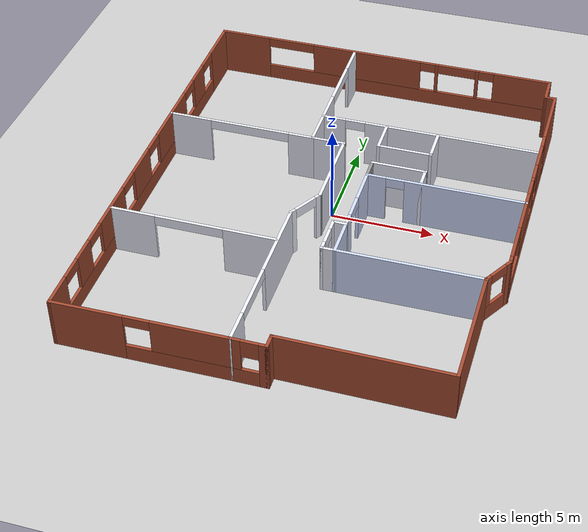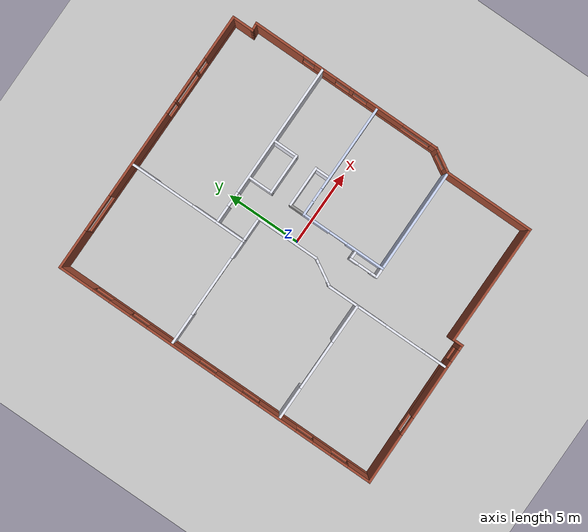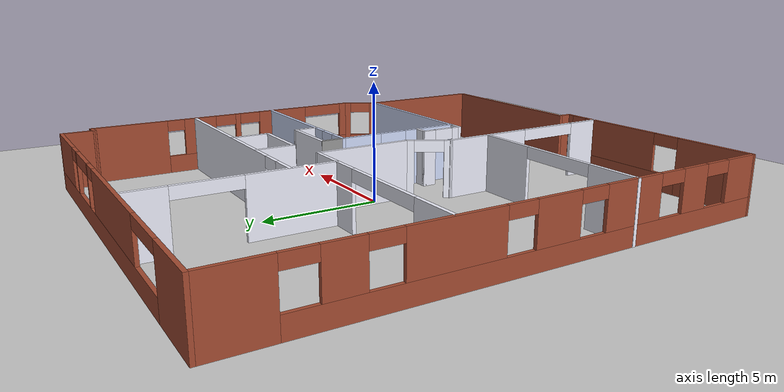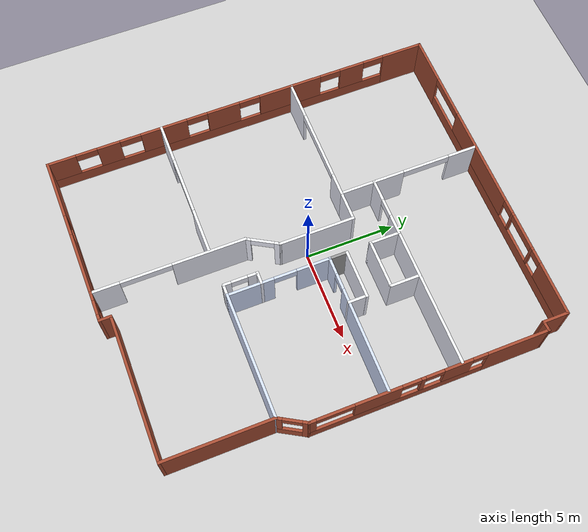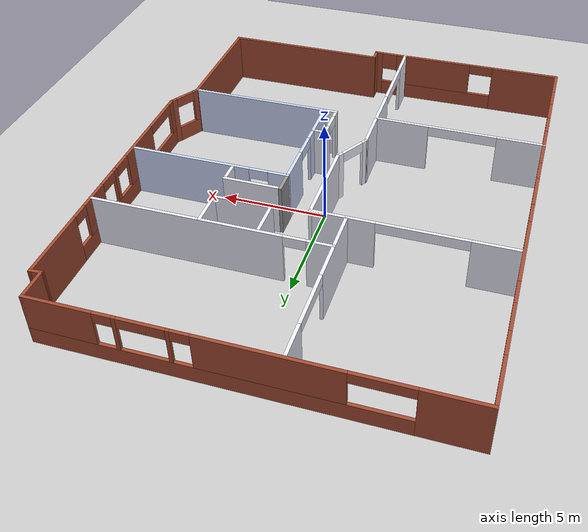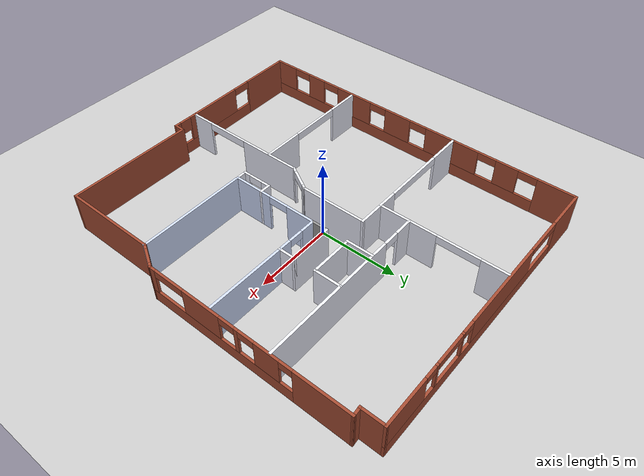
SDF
<sdf version="1.6">
 <world name="Apartment 1023">
  <model name="ground_plane">
   <static>1</static>
   <link name="link">
    <collision name="collision">
     <geometry><plane><normal>0 0 1</normal><size>100 100</size></plane></geometry>
     <surface><friction><ode><mu>100</mu><mu2>50</mu2></ode></friction></surface>
    </collision>
    <visual name="visual">
     <cast_shadows>0</cast_shadows>
     <geometry><plane><normal>0 0 1</normal><size>100 100</size></plane></geometry>
     <material>
      <script><uri>file://media/materials/scripts/gazebo.material</uri><name>Gazebo/Grey</name></script>
     </material>
    </visual>
   </link>
  </model>
  <model name="Apartment 1023">
   <pose>0.01101 -0.47433 0 0 -0 0</pose>
   <link name="Wall_0">
    <pose>9.15391 3.30895 0 0 0 -1.5708</pose>
    <visual name="Wall_0_Visual_0">
     <pose>-4.77738 0 1.25 0 -0 0</pose>
     <geometry><box><size>3.44524 0.15 2.5</size></box></geometry>
     <material>
      <script><uri>file://media/materials/scripts/gazebo.material</uri><name>Gazebo/Bricks</name></script>
      <ambient>1 1 1 1</ambient>
     </material>
     <meta><layer>0</layer></meta>
    </visual>
    <collision name="Wall_0_Collision_0">
     <geometry><box><size>3.44524 0.15 2.5</size></box></geometry>
     <pose>-4.77738 0 1.25 0 -0 0</pose>
    </collision>
    <visual name="Wall_0_Visual_1">
     <pose>1.72262 0 0.4 0 -0 0</pose>
     <geometry><box><size>9.55476 0.15 0.8</size></box></geometry>
     <material>
      <script><uri>file://media/materials/scripts/gazebo.material</uri><name>Gazebo/Bricks</name></script>
      <ambient>1 1 1 1</ambient>
     </material>
     <meta><layer>0</layer></meta>
    </visual>
    <collision name="Wall_0_Collision_1">
     <geometry><box><size>9.55476 0.15 0.8</size></box></geometry>
     <pose>1.72262 0 0.4 0 -0 0</pose>
    </collision>
    <visual name="Wall_0_Visual_2">
     <pose>-1.48168 0 1.65 0 -0 0</pose>
     <geometry><box><size>1.54617 0.15 1.7</size></box></geometry>
     <material>
      <script><uri>file://media/materials/scripts/gazebo.material</uri><name>Gazebo/Bricks</name></script>
      <ambient>1 1 1 1</ambient>
     </material>
     <meta><layer>0</layer></meta>
    </visual>
    <collision name="Wall_0_Collision_2">
     <geometry><box><size>1.54617 0.15 1.7</size></box></geometry>
     <pose>-1.48168 0 1.65 0 -0 0</pose>
    </collision>
    <visual name="Wall_0_Visual_3">
     <pose>0.414924 0 1.65 0 -0 0</pose>
     <geometry><box><size>0.247041 0.15 1.7</size></box></geometry>
     <material>
      <script><uri>file://media/materials/scripts/gazebo.material</uri><name>Gazebo/Bricks</name></script>
      <ambient>1 1 1 1</ambient>
     </material>
     <meta><layer>0</layer></meta>
    </visual>
    <collision name="Wall_0_Collision_3">
     <geometry><box><size>0.247041 0.15 1.7</size></box></geometry>
     <pose>0.414924 0 1.65 0 -0 0</pose>
    </collision>
    <visual name="Wall_0_Visual_4">
     <pose>2.79392 0 1.65 0 -0 0</pose>
     <geometry><box><size>2.51094 0.15 1.7</size></box></geometry>
     <material>
      <script><uri>file://media/materials/scripts/gazebo.material</uri><name>Gazebo/Bricks</name></script>
      <ambient>1 1 1 1</ambient>
     </material>
     <meta><layer>0</layer></meta>
    </visual>
    <collision name="Wall_0_Collision_4">
     <geometry><box><size>2.51094 0.15 1.7</size></box></geometry>
     <pose>2.79392 0 1.65 0 -0 0</pose>
    </collision>
    <visual name="Wall_0_Visual_5">
     <pose>6.27469 0 1.65 0 -0 0</pose>
     <geometry><box><size>0.450614 0.15 1.7</size></box></geometry>
     <material>
      <script><uri>file://media/materials/scripts/gazebo.material</uri><name>Gazebo/Bricks</name></script>
      <ambient>1 1 1 1</ambient>
     </material>
     <meta><layer>0</layer></meta>
    </visual>
    <collision name="Wall_0_Collision_5">
     <geometry><box><size>0.450614 0.15 1.7</size></box></geometry>
     <pose>6.27469 0 1.65 0 -0 0</pose>
    </collision>
    <visual name="Wall_0_Visual_6">
     <pose>-2.65476 0 2.25 0 -0 0</pose>
     <geometry><box><size>0.8 0.15 0.5</size></box></geometry>
     <material>
      <script><uri>file://media/materials/scripts/gazebo.material</uri><name>Gazebo/Bricks</name></script>
      <ambient>1 1 1 1</ambient>
     </material>
     <meta><layer>0</layer></meta>
    </visual>
    <collision name="Wall_0_Collision_6">
     <geometry><box><size>0.8 0.15 0.5</size></box></geometry>
     <pose>-2.65476 0 2.25 0 -0 0</pose>
    </collision>
    <visual name="Wall_0_Visual_7">
     <pose>-0.208596 0 2.25 0 -0 0</pose>
     <geometry><box><size>1 0.15 0.5</size></box></geometry>
     <material>
      <script><uri>file://media/materials/scripts/gazebo.material</uri><name>Gazebo/Bricks</name></script>
      <ambient>1 1 1 1</ambient>
     </material>
     <meta><layer>0</layer></meta>
    </visual>
    <collision name="Wall_0_Collision_7">
     <geometry><box><size>1 0.15 0.5</size></box></geometry>
     <pose>-0.208596 0 2.25 0 -0 0</pose>
    </collision>
    <visual name="Wall_0_Visual_8">
     <pose>1.03845 0 2.25 0 -0 0</pose>
     <geometry><box><size>1 0.15 0.5</size></box></geometry>
     <material>
      <script><uri>file://media/materials/scripts/gazebo.material</uri><name>Gazebo/Bricks</name></script>
      <ambient>1 1 1 1</ambient>
     </material>
     <meta><layer>0</layer></meta>
    </visual>
    <collision name="Wall_0_Collision_8">
     <geometry><box><size>1 0.15 0.5</size></box></geometry>
     <pose>1.03845 0 2.25 0 -0 0</pose>
    </collision>
    <visual name="Wall_0_Visual_9">
     <pose>5.04939 0 2.25 0 -0 0</pose>
     <geometry><box><size>2 0.15 0.5</size></box></geometry>
     <material>
      <script><uri>file://media/materials/scripts/gazebo.material</uri><name>Gazebo/Bricks</name></script>
      <ambient>1 1 1 1</ambient>
     </material>
     <meta><layer>0</layer></meta>
    </visual>
    <collision name="Wall_0_Collision_9">
     <geometry><box><size>2 0.15 0.5</size></box></geometry>
     <pose>5.04939 0 2.25 0 -0 0</pose>
    </collision>
   </link>
   <link name="Wall_1">
    <pose>8.75391 -3.80888 0 0 0 -2.0944</pose>
    <visual name="Wall_1_Visual_0">
     <pose>-0.689205 0 1.25 0 -0 0</pose>
     <geometry><box><size>0.371589 0.15 2.5</size></box></geometry>
     <material>
      <script><uri>file://media/materials/scripts/gazebo.material</uri><name>Gazebo/Bricks</name></script>
      <ambient>1 1 1 1</ambient>
     </material>
     <meta><layer>0</layer></meta>
    </visual>
    <collision name="Wall_1_Collision_0">
     <geometry><box><size>0.371589 0.15 2.5</size></box></geometry>
     <pose>-0.689205 0 1.25 0 -0 0</pose>
    </collision>
    <visual name="Wall_1_Visual_1">
     <pose>0.185795 0 0.4 0 -0 0</pose>
     <geometry><box><size>1.37841 0.15 0.8</size></box></geometry>
     <material>
      <script><uri>file://media/materials/scripts/gazebo.material</uri><name>Gazebo/Bricks</name></script>
      <ambient>1 1 1 1</ambient>
     </material>
     <meta><layer>0</layer></meta>
    </visual>
    <collision name="Wall_1_Collision_1">
     <geometry><box><size>1.37841 0.15 0.8</size></box></geometry>
     <pose>0.185795 0 0.4 0 -0 0</pose>
    </collision>
    <visual name="Wall_1_Visual_2">
     <pose>0.685795 0 1.65 0 -0 0</pose>
     <geometry><box><size>0.378411 0.15 1.7</size></box></geometry>
     <material>
      <script><uri>file://media/materials/scripts/gazebo.material</uri><name>Gazebo/Bricks</name></script>
      <ambient>1 1 1 1</ambient>
     </material>
     <meta><layer>0</layer></meta>
    </visual>
    <collision name="Wall_1_Collision_2">
     <geometry><box><size>0.378411 0.15 1.7</size></box></geometry>
     <pose>0.685795 0 1.65 0 -0 0</pose>
    </collision>
    <visual name="Wall_1_Visual_3">
     <pose>-0.003411 0 2.25 0 -0 0</pose>
     <geometry><box><size>1 0.15 0.5</size></box></geometry>
     <material>
      <script><uri>file://media/materials/scripts/gazebo.material</uri><name>Gazebo/Bricks</name></script>
      <ambient>1 1 1 1</ambient>
     </material>
     <meta><layer>0</layer></meta>
    </visual>
    <collision name="Wall_1_Collision_3">
     <geometry><box><size>1 0.15 0.5</size></box></geometry>
     <pose>-0.003411 0 2.25 0 -0 0</pose>
    </collision>
   </link>
   <link name="Wall_10">
    <pose>-1.77108 7.02545 0 0 -0 1.5708</pose>
    <visual name="Wall_10_Visual_0">
     <pose>-2.14904 0 1.25 0 -0 0</pose>
     <geometry><box><size>3.70192 0.15 2.5</size></box></geometry>
     <material>
      <script><uri>file://media/materials/scripts/gazebo.material</uri><name>Gazebo/Grey</name></script>
      <ambient>0.941176 0.94902 1 1</ambient>
     </material>
     <meta><layer>0</layer></meta>
    </visual>
    <collision name="Wall_10_Collision_0">
     <geometry><box><size>3.70192 0.15 2.5</size></box></geometry>
     <pose>-2.14904 0 1.25 0 -0 0</pose>
    </collision>
    <visual name="Wall_10_Visual_1">
     <pose>3.18043 0 1.25 0 -0 0</pose>
     <geometry><box><size>1.63914 0.15 2.5</size></box></geometry>
     <material>
      <script><uri>file://media/materials/scripts/gazebo.material</uri><name>Gazebo/Grey</name></script>
      <ambient>0.941176 0.94902 1 1</ambient>
     </material>
     <meta><layer>0</layer></meta>
    </visual>
    <collision name="Wall_10_Collision_1">
     <geometry><box><size>1.63914 0.15 2.5</size></box></geometry>
     <pose>3.18043 0 1.25 0 -0 0</pose>
    </collision>
    <visual name="Wall_10_Visual_2">
     <pose>1.03139 0 2.25 0 -0 0</pose>
     <geometry><box><size>2.65894 0.15 0.5</size></box></geometry>
     <material>
      <script><uri>file://media/materials/scripts/gazebo.material</uri><name>Gazebo/Grey</name></script>
      <ambient>0.941176 0.94902 1 1</ambient>
     </material>
     <meta><layer>0</layer></meta>
    </visual>
    <collision name="Wall_10_Collision_2">
     <geometry><box><size>2.65894 0.15 0.5</size></box></geometry>
     <pose>1.03139 0 2.25 0 -0 0</pose>
    </collision>
   </link>
   <link name="Wall_13">
    <pose>-0.246085 11.0505 0 0 -0 0</pose>
    <visual name="Wall_13_Visual_0">
     <pose>-7.65813 0 1.25 0 -0 0</pose>
     <geometry><box><size>2.68375 0.15 2.5</size></box></geometry>
     <material>
      <script><uri>file://media/materials/scripts/gazebo.material</uri><name>Gazebo/Bricks</name></script>
      <ambient>1 1 1 1</ambient>
     </material>
     <meta><layer>0</layer></meta>
    </visual>
    <collision name="Wall_13_Collision_0">
     <geometry><box><size>2.68375 0.15 2.5</size></box></geometry>
     <pose>-7.65813 0 1.25 0 -0 0</pose>
    </collision>
    <visual name="Wall_13_Visual_1">
     <pose>1.34187 0 0.4 0 -0 0</pose>
     <geometry><box><size>15.3163 0.15 0.8</size></box></geometry>
     <material>
      <script><uri>file://media/materials/scripts/gazebo.material</uri><name>Gazebo/Bricks</name></script>
      <ambient>1 1 1 1</ambient>
     </material>
     <meta><layer>0</layer></meta>
    </visual>
    <collision name="Wall_13_Collision_1">
     <geometry><box><size>15.3163 0.15 0.8</size></box></geometry>
     <pose>1.34187 0 0.4 0 -0 0</pose>
    </collision>
    <visual name="Wall_13_Visual_2">
     <pose>-0.874893 0 1.65 0 -0 0</pose>
     <geometry><box><size>5.88271 0.15 1.7</size></box></geometry>
     <material>
      <script><uri>file://media/materials/scripts/gazebo.material</uri><name>Gazebo/Bricks</name></script>
      <ambient>1 1 1 1</ambient>
     </material>
     <meta><layer>0</layer></meta>
    </visual>
    <collision name="Wall_13_Collision_2">
     <geometry><box><size>5.88271 0.15 1.7</size></box></geometry>
     <pose>-0.874893 0 1.65 0 -0 0</pose>
    </collision>
    <visual name="Wall_13_Visual_3">
     <pose>2.94577 0 1.65 0 -0 0</pose>
     <geometry><box><size>0.15862 0.15 1.7</size></box></geometry>
     <material>
      <script><uri>file://media/materials/scripts/gazebo.material</uri><name>Gazebo/Bricks</name></script>
      <ambient>1 1 1 1</ambient>
     </material>
     <meta><layer>0</layer></meta>
    </visual>
    <collision name="Wall_13_Collision_3">
     <geometry><box><size>0.15862 0.15 1.7</size></box></geometry>
     <pose>2.94577 0 1.65 0 -0 0</pose>
    </collision>
    <visual name="Wall_13_Visual_4">
     <pose>5.10951 0 1.65 0 -0 0</pose>
     <geometry><box><size>0.168859 0.15 1.7</size></box></geometry>
     <material>
      <script><uri>file://media/materials/scripts/gazebo.material</uri><name>Gazebo/Bricks</name></script>
      <ambient>1 1 1 1</ambient>
     </material>
     <meta><layer>0</layer></meta>
    </visual>
    <collision name="Wall_13_Collision_4">
     <geometry><box><size>0.168859 0.15 1.7</size></box></geometry>
     <pose>5.10951 0 1.65 0 -0 0</pose>
    </collision>
    <visual name="Wall_13_Visual_5">
     <pose>7.49697 0 1.65 0 -0 0</pose>
     <geometry><box><size>3.00606 0.15 1.7</size></box></geometry>
     <material>
      <script><uri>file://media/materials/scripts/gazebo.material</uri><name>Gazebo/Bricks</name></script>
      <ambient>1 1 1 1</ambient>
     </material>
     <meta><layer>0</layer></meta>
    </visual>
    <collision name="Wall_13_Collision_5">
     <geometry><box><size>3.00606 0.15 1.7</size></box></geometry>
     <pose>7.49697 0 1.65 0 -0 0</pose>
    </collision>
    <visual name="Wall_13_Visual_6">
     <pose>-5.06625 0 2.25 0 -0 0</pose>
     <geometry><box><size>2.5 0.15 0.5</size></box></geometry>
     <material>
      <script><uri>file://media/materials/scripts/gazebo.material</uri><name>Gazebo/Bricks</name></script>
      <ambient>1 1 1 1</ambient>
     </material>
     <meta><layer>0</layer></meta>
    </visual>
    <collision name="Wall_13_Collision_6">
     <geometry><box><size>2.5 0.15 0.5</size></box></geometry>
     <pose>-5.06625 0 2.25 0 -0 0</pose>
    </collision>
    <visual name="Wall_13_Visual_7">
     <pose>2.46646 0 2.25 0 -0 0</pose>
     <geometry><box><size>0.8 0.15 0.5</size></box></geometry>
     <material>
      <script><uri>file://media/materials/scripts/gazebo.material</uri><name>Gazebo/Bricks</name></script>
      <ambient>1 1 1 1</ambient>
     </material>
     <meta><layer>0</layer></meta>
    </visual>
    <collision name="Wall_13_Collision_7">
     <geometry><box><size>0.8 0.15 0.5</size></box></geometry>
     <pose>2.46646 0 2.25 0 -0 0</pose>
    </collision>
    <visual name="Wall_13_Visual_8">
     <pose>4.02508 0 2.25 0 -0 0</pose>
     <geometry><box><size>2 0.15 0.5</size></box></geometry>
     <material>
      <script><uri>file://media/materials/scripts/gazebo.material</uri><name>Gazebo/Bricks</name></script>
      <ambient>1 1 1 1</ambient>
     </material>
     <meta><layer>0</layer></meta>
    </visual>
    <collision name="Wall_13_Collision_8">
     <geometry><box><size>2 0.15 0.5</size></box></geometry>
     <pose>4.02508 0 2.25 0 -0 0</pose>
    </collision>
    <visual name="Wall_13_Visual_9">
     <pose>5.59394 0 2.25 0 -0 0</pose>
     <geometry><box><size>0.8 0.15 0.5</size></box></geometry>
     <material>
      <script><uri>file://media/materials/scripts/gazebo.material</uri><name>Gazebo/Bricks</name></script>
      <ambient>1 1 1 1</ambient>
     </material>
     <meta><layer>0</layer></meta>
    </visual>
    <collision name="Wall_13_Collision_9">
     <geometry><box><size>0.8 0.15 0.5</size></box></geometry>
     <pose>5.59394 0 2.25 0 -0 0</pose>
    </collision>
   </link>
   <link name="Wall_14">
    <collision name="Wall_14_Collision">
     <geometry><box><size>1.5 0.15 2.5</size></box></geometry>
     <pose>0 0 1.25 0 -0 0</pose>
    </collision>
    <visual name="Wall_14_Visual">
     <pose>0 0 1.25 0 -0 0</pose>
     <geometry><box><size>1.5 0.15 2.5</size></box></geometry>
     <material>
      <script><uri>file://media/materials/scripts/gazebo.material</uri><name>Gazebo/Bricks</name></script>
      <ambient>1 1 1 1</ambient>
     </material>
     <meta><layer>0</layer></meta>
    </visual>
    <pose>8.67891 10.3755 0 0 0 -1.5708</pose>
   </link>
   <link name="Wall_15">
    <collision name="Wall_15_Collision">
     <geometry><box><size>0.626179 0.15 2.5</size></box></geometry>
     <pose>0 0 1.25 0 -0 0</pose>
    </collision>
    <visual name="Wall_15_Visual">
     <pose>0 0 1.25 0 -0 0</pose>
     <geometry><box><size>0.626179 0.15 2.5</size></box></geometry>
     <material>
      <script><uri>file://media/materials/scripts/gazebo.material</uri><name>Gazebo/Bricks</name></script>
      <ambient>1 1 1 1</ambient>
     </material>
     <meta><layer>0</layer></meta>
    </visual>
    <pose>8.91642 9.7172 0 0 -0 0.070396</pose>
   </link>
   <link name="Wall_17">
    <pose>3.65986 4.99702 0 0 -0 0</pose>
    <visual name="Wall_17_Visual_0">
     <pose>-4.88064 0 1.25 0 -0 0</pose>
     <geometry><box><size>1.23872 0.15 2.5</size></box></geometry>
     <material>
      <script><uri>file://media/materials/scripts/gazebo.material</uri><name>Gazebo/Grey</name></script>
      <ambient>0.941176 0.94902 1 1</ambient>
     </material>
     <meta><layer>0</layer></meta>
    </visual>
    <collision name="Wall_17_Collision_0">
     <geometry><box><size>1.23872 0.15 2.5</size></box></geometry>
     <pose>-4.88064 0 1.25 0 -0 0</pose>
    </collision>
    <visual name="Wall_17_Visual_1">
     <pose>1.11936 0 1.25 0 -0 0</pose>
     <geometry><box><size>8.76128 0.15 2.5</size></box></geometry>
     <material>
      <script><uri>file://media/materials/scripts/gazebo.material</uri><name>Gazebo/Grey</name></script>
      <ambient>0.941176 0.94902 1 1</ambient>
     </material>
     <meta><layer>0</layer></meta>
    </visual>
    <collision name="Wall_17_Collision_1">
     <geometry><box><size>8.76128 0.15 2.5</size></box></geometry>
     <pose>1.11936 0 1.25 0 -0 0</pose>
    </collision>
    <visual name="Wall_17_Visual_2">
     <pose>-3.76128 0 2.25 0 -0 0</pose>
     <geometry><box><size>1 0.15 0.5</size></box></geometry>
     <material>
      <script><uri>file://media/materials/scripts/gazebo.material</uri><name>Gazebo/Grey</name></script>
      <ambient>0.941176 0.94902 1 1</ambient>
     </material>
     <meta><layer>0</layer></meta>
    </visual>
    <collision name="Wall_17_Collision_2">
     <geometry><box><size>1 0.15 0.5</size></box></geometry>
     <pose>-3.76128 0 2.25 0 -0 0</pose>
    </collision>
   </link>
   <link name="Wall_19">
    <collision name="Wall_19_Collision">
     <geometry><box><size>1.75 0.15 2.5</size></box></geometry>
     <pose>0 0 1.25 0 -0 0</pose>
    </collision>
    <visual name="Wall_19_Visual">
     <pose>0 0 1.25 0 -0 0</pose>
     <geometry><box><size>1.75 0.15 2.5</size></box></geometry>
     <material>
      <script><uri>file://media/materials/scripts/gazebo.material</uri><name>Gazebo/Grey</name></script>
      <ambient>0.941176 0.94902 1 1</ambient>
     </material>
     <meta><layer>0</layer></meta>
    </visual>
    <pose>1.50144 4.18379 0 0 0 -1.5708</pose>
   </link>
   <link name="Wall_2">
    <collision name="Wall_2_Collision">
     <geometry><box><size>6 0.15 2.5</size></box></geometry>
     <pose>0 0 1.25 0 -0 0</pose>
    </collision>
    <visual name="Wall_2_Visual">
     <pose>0 0 1.25 0 -0 0</pose>
     <geometry><box><size>6 0.15 2.5</size></box></geometry>
     <material>
      <script><uri>file://media/materials/scripts/gazebo.material</uri><name>Gazebo/Bricks</name></script>
      <ambient>1 1 1 1</ambient>
     </material>
     <meta><layer>0</layer></meta>
    </visual>
    <pose>8.35392 -7.4267 0 0 0 -1.5708</pose>
   </link>
   <link name="Wall_20">
    <collision name="Wall_20_Collision">
     <geometry><box><size>2.75 0.15 2.5</size></box></geometry>
     <pose>0 0 1.25 0 -0 0</pose>
    </collision>
    <visual name="Wall_20_Visual">
     <pose>0 0 1.25 0 -0 0</pose>
     <geometry><box><size>2.75 0.15 2.5</size></box></geometry>
     <material>
      <script><uri>file://media/materials/scripts/gazebo.material</uri><name>Gazebo/Grey</name></script>
      <ambient>0.941176 0.94902 1 1</ambient>
     </material>
     <meta><layer>0</layer></meta>
    </visual>
    <pose>2.80144 3.38379 0 0 -0 0</pose>
   </link>
   <link name="Wall_21">
    <collision name="Wall_21_Collision">
     <geometry><box><size>1.75 0.15 2.5</size></box></geometry>
     <pose>0 0 1.25 0 -0 0</pose>
    </collision>
    <visual name="Wall_21_Visual">
     <pose>0 0 1.25 0 -0 0</pose>
     <geometry><box><size>1.75 0.15 2.5</size></box></geometry>
     <material>
      <script><uri>file://media/materials/scripts/gazebo.material</uri><name>Gazebo/Grey</name></script>
      <ambient>0.941176 0.94902 1 1</ambient>
     </material>
     <meta><layer>0</layer></meta>
    </visual>
    <pose>4.10144 4.18379 0 0 -0 1.5708</pose>
   </link>
   <link name="Wall_3">
    <collision name="Wall_3_Collision">
     <geometry><box><size>8 0.15 2.5</size></box></geometry>
     <pose>0 0 1.25 0 -0 0</pose>
    </collision>
    <visual name="Wall_3_Visual">
     <pose>0 0 1.25 0 -0 0</pose>
     <geometry><box><size>8 0.15 2.5</size></box></geometry>
     <material>
      <script><uri>file://media/materials/scripts/gazebo.material</uri><name>Gazebo/Bricks</name></script>
      <ambient>1 1 1 1</ambient>
     </material>
     <meta><layer>0</layer></meta>
    </visual>
    <pose>4.42891 -10.3517 0 0 -0 3.14159</pose>
   </link>
   <link name="Wall_35">
    <pose>5.34861 1.06112 0 0 -0 3.14159</pose>
    <visual name="Wall_35_Visual_0">
     <pose>-0.950171 0 1.25 0 -0 0</pose>
     <geometry><box><size>5.84966 0.15 2.5</size></box></geometry>
     <material>
      <script><uri>file://media/materials/scripts/gazebo.material</uri><name>Gazebo/Grey</name></script>
      <ambient>0.827451 0.87451 1 1</ambient>
     </material>
     <meta><layer>0</layer></meta>
    </visual>
    <collision name="Wall_35_Collision_0">
     <geometry><box><size>5.84966 0.15 2.5</size></box></geometry>
     <pose>-0.950171 0 1.25 0 -0 0</pose>
    </collision>
    <visual name="Wall_35_Visual_1">
     <pose>3.37483 0 1.25 0 -0 0</pose>
     <geometry><box><size>1.00034 0.15 2.5</size></box></geometry>
     <material>
      <script><uri>file://media/materials/scripts/gazebo.material</uri><name>Gazebo/Grey</name></script>
      <ambient>0.827451 0.87451 1 1</ambient>
     </material>
     <meta><layer>0</layer></meta>
    </visual>
    <collision name="Wall_35_Collision_1">
     <geometry><box><size>1.00034 0.15 2.5</size></box></geometry>
     <pose>3.37483 0 1.25 0 -0 0</pose>
    </collision>
    <visual name="Wall_35_Visual_2">
     <pose>2.42466 0 2.25 0 -0 0</pose>
     <geometry><box><size>0.9 0.15 0.5</size></box></geometry>
     <material>
      <script><uri>file://media/materials/scripts/gazebo.material</uri><name>Gazebo/Grey</name></script>
      <ambient>0.827451 0.87451 1 1</ambient>
     </material>
     <meta><layer>0</layer></meta>
    </visual>
    <collision name="Wall_35_Collision_2">
     <geometry><box><size>0.9 0.15 0.5</size></box></geometry>
     <pose>2.42466 0 2.25 0 -0 0</pose>
    </collision>
   </link>
   <link name="Wall_36">
    <collision name="Wall_36_Collision">
     <geometry><box><size>1.12 0.15 2.5</size></box></geometry>
     <pose>0 0 1.25 0 -0 0</pose>
    </collision>
    <visual name="Wall_36_Visual">
     <pose>0 0 1.25 0 -0 0</pose>
     <geometry><box><size>1.12 0.15 2.5</size></box></geometry>
     <material>
      <script><uri>file://media/materials/scripts/gazebo.material</uri><name>Gazebo/Grey</name></script>
      <ambient>1 1 1 1</ambient>
     </material>
     <meta><layer>0</layer></meta>
    </visual>
    <pose>1.54861 1.54612 0 0 -0 1.5708</pose>
   </link>
   <link name="Wall_37">
    <collision name="Wall_37_Collision">
     <geometry><box><size>2.75 0.15 2.5</size></box></geometry>
     <pose>0 0 1.25 0 -0 0</pose>
    </collision>
    <visual name="Wall_37_Visual">
     <pose>0 0 1.25 0 -0 0</pose>
     <geometry><box><size>2.75 0.15 2.5</size></box></geometry>
     <material>
      <script><uri>file://media/materials/scripts/gazebo.material</uri><name>Gazebo/Grey</name></script>
      <ambient>0.941176 0.94902 1 1</ambient>
     </material>
     <meta><layer>0</layer></meta>
    </visual>
    <pose>2.85861 2.03112 0 0 -0 0</pose>
   </link>
   <link name="Wall_38">
    <collision name="Wall_38_Collision">
     <geometry><box><size>1.12 0.15 2.5</size></box></geometry>
     <pose>0 0 1.25 0 -0 0</pose>
    </collision>
    <visual name="Wall_38_Visual">
     <pose>0 0 1.25 0 -0 0</pose>
     <geometry><box><size>1.12 0.15 2.5</size></box></geometry>
     <material>
      <script><uri>file://media/materials/scripts/gazebo.material</uri><name>Gazebo/Grey</name></script>
      <ambient>0.941176 0.94902 1 1</ambient>
     </material>
     <meta><layer>0</layer></meta>
    </visual>
    <pose>4.14861 1.54612 0 0 0 -1.5708</pose>
   </link>
   <link name="Wall_4">
    <collision name="Wall_4_Collision">
     <geometry><box><size>0.75 0.15 2.5</size></box></geometry>
     <pose>0 0 1.25 0 -0 0</pose>
    </collision>
    <visual name="Wall_4_Visual">
     <pose>0 0 1.25 0 -0 0</pose>
     <geometry><box><size>0.75 0.15 2.5</size></box></geometry>
     <material>
      <script><uri>file://media/materials/scripts/gazebo.material</uri><name>Gazebo/Bricks</name></script>
      <ambient>1 1 1 1</ambient>
     </material>
     <meta><layer>0</layer></meta>
    </visual>
    <pose>0.503915 -10.6517 0 0 0 -1.5708</pose>
   </link>
   <link name="Wall_40">
    <pose>1.54861 -1.73888 0 0 0 -1.5708</pose>
    <visual name="Wall_40_Visual_0">
     <pose>-1.92511 0 1.25 0 -0 0</pose>
     <geometry><box><size>1.89977 0.15 2.5</size></box></geometry>
     <material>
      <script><uri>file://media/materials/scripts/gazebo.material</uri><name>Gazebo/Grey</name></script>
      <ambient>0.827451 0.87451 1 1</ambient>
     </material>
     <meta><layer>0</layer></meta>
    </visual>
    <collision name="Wall_40_Collision_0">
     <geometry><box><size>1.89977 0.15 2.5</size></box></geometry>
     <pose>-1.92511 0 1.25 0 -0 0</pose>
    </collision>
    <visual name="Wall_40_Visual_1">
     <pose>1.57489 0 1.25 0 -0 0</pose>
     <geometry><box><size>2.60023 0.15 2.5</size></box></geometry>
     <material>
      <script><uri>file://media/materials/scripts/gazebo.material</uri><name>Gazebo/Grey</name></script>
      <ambient>0.827451 0.87451 1 1</ambient>
     </material>
     <meta><layer>0</layer></meta>
    </visual>
    <collision name="Wall_40_Collision_1">
     <geometry><box><size>2.60023 0.15 2.5</size></box></geometry>
     <pose>1.57489 0 1.25 0 -0 0</pose>
    </collision>
    <visual name="Wall_40_Visual_2">
     <pose>-0.350228 0 2.25 0 -0 0</pose>
     <geometry><box><size>1.25 0.15 0.5</size></box></geometry>
     <material>
      <script><uri>file://media/materials/scripts/gazebo.material</uri><name>Gazebo/Grey</name></script>
      <ambient>0.827451 0.87451 1 1</ambient>
     </material>
     <meta><layer>0</layer></meta>
    </visual>
    <collision name="Wall_40_Collision_2">
     <geometry><box><size>1.25 0.15 0.5</size></box></geometry>
     <pose>-0.350228 0 2.25 0 -0 0</pose>
    </collision>
   </link>
   <link name="Wall_41">
    <collision name="Wall_41_Collision">
     <geometry><box><size>6.9554 0.15 2.5</size></box></geometry>
     <pose>0 0 1.25 0 -0 0</pose>
    </collision>
    <visual name="Wall_41_Visual">
     <pose>0 0 1.25 0 -0 0</pose>
     <geometry><box><size>6.9554 0.15 2.5</size></box></geometry>
     <material>
      <script><uri>file://media/materials/scripts/gazebo.material</uri><name>Gazebo/Grey</name></script>
      <ambient>0.827451 0.87451 1 1</ambient>
     </material>
     <meta><layer>0</layer></meta>
    </visual>
    <pose>4.95126 -4.52029 0 0 -0 0.005464</pose>
   </link>
   <link name="Wall_43">
    <collision name="Wall_43_Collision">
     <geometry><box><size>0.75 0.15 2.5</size></box></geometry>
     <pose>0 0 1.25 0 -0 0</pose>
    </collision>
    <visual name="Wall_43_Visual">
     <pose>0 0 1.25 0 -0 0</pose>
     <geometry><box><size>0.75 0.15 2.5</size></box></geometry>
     <material>
      <script><uri>file://media/materials/scripts/gazebo.material</uri><name>Gazebo/Grey</name></script>
      <ambient>0.941176 0.94902 1 1</ambient>
     </material>
     <meta><layer>0</layer></meta>
    </visual>
    <pose>1.24861 -4.53888 0 0 -0 3.14159</pose>
   </link>
   <link name="Wall_44">
    <pose>0.948612 -3.61388 0 0 -0 1.5708</pose>
    <visual name="Wall_44_Visual_0">
     <pose>-0.755696 0 1.25 0 -0 0</pose>
     <geometry><box><size>0.488608 0.15 2.5</size></box></geometry>
     <material>
      <script><uri>file://media/materials/scripts/gazebo.material</uri><name>Gazebo/Grey</name></script>
      <ambient>0.941176 0.94902 1 1</ambient>
     </material>
     <meta><layer>0</layer></meta>
    </visual>
    <collision name="Wall_44_Collision_0">
     <geometry><box><size>0.488608 0.15 2.5</size></box></geometry>
     <pose>-0.755696 0 1.25 0 -0 0</pose>
    </collision>
    <visual name="Wall_44_Visual_1">
     <pose>0.694304 0 1.25 0 -0 0</pose>
     <geometry><box><size>0.611392 0.15 2.5</size></box></geometry>
     <material>
      <script><uri>file://media/materials/scripts/gazebo.material</uri><name>Gazebo/Grey</name></script>
      <ambient>0.941176 0.94902 1 1</ambient>
     </material>
     <meta><layer>0</layer></meta>
    </visual>
    <collision name="Wall_44_Collision_1">
     <geometry><box><size>0.611392 0.15 2.5</size></box></geometry>
     <pose>0.694304 0 1.25 0 -0 0</pose>
    </collision>
    <visual name="Wall_44_Visual_2">
     <pose>-0.061392 0 2.25 0 -0 0</pose>
     <geometry><box><size>0.9 0.15 0.5</size></box></geometry>
     <material>
      <script><uri>file://media/materials/scripts/gazebo.material</uri><name>Gazebo/Grey</name></script>
      <ambient>0.941176 0.94902 1 1</ambient>
     </material>
     <meta><layer>0</layer></meta>
    </visual>
    <collision name="Wall_44_Collision_2">
     <geometry><box><size>0.9 0.15 0.5</size></box></geometry>
     <pose>-0.061392 0 2.25 0 -0 0</pose>
    </collision>
   </link>
   <link name="Wall_45">
    <collision name="Wall_45_Collision">
     <geometry><box><size>0.75 0.15 2.5</size></box></geometry>
     <pose>0 0 1.25 0 -0 0</pose>
    </collision>
    <visual name="Wall_45_Visual">
     <pose>0 0 1.25 0 -0 0</pose>
     <geometry><box><size>0.75 0.15 2.5</size></box></geometry>
     <material>
      <script><uri>file://media/materials/scripts/gazebo.material</uri><name>Gazebo/Grey</name></script>
      <ambient>0.941176 0.94902 1 1</ambient>
     </material>
     <meta><layer>0</layer></meta>
    </visual>
    <pose>1.24861 -2.68888 0 0 -0 0</pose>
   </link>
   <link name="Wall_47">
    <pose>-9.17108 0.000451 0 0 0 -1.5708</pose>
    <visual name="Wall_47_Visual_0">
     <pose>-9.92405 0 1.25 0 -0 0</pose>
     <geometry><box><size>2.4019 0.15 2.5</size></box></geometry>
     <material>
      <script><uri>file://media/materials/scripts/gazebo.material</uri><name>Gazebo/Bricks</name></script>
      <ambient>1 1 1 1</ambient>
     </material>
     <meta><layer>0</layer></meta>
    </visual>
    <collision name="Wall_47_Collision_0">
     <geometry><box><size>2.4019 0.15 2.5</size></box></geometry>
     <pose>-9.92405 0 1.25 0 -0 0</pose>
    </collision>
    <visual name="Wall_47_Visual_1">
     <pose>1.20095 0 0.4 0 -0 0</pose>
     <geometry><box><size>19.8481 0.15 0.8</size></box></geometry>
     <material>
      <script><uri>file://media/materials/scripts/gazebo.material</uri><name>Gazebo/Bricks</name></script>
      <ambient>1 1 1 1</ambient>
     </material>
     <meta><layer>0</layer></meta>
    </visual>
    <collision name="Wall_47_Collision_1">
     <geometry><box><size>19.8481 0.15 0.8</size></box></geometry>
     <pose>1.20095 0 0.4 0 -0 0</pose>
    </collision>
    <visual name="Wall_47_Visual_2">
     <pose>-6.79693 0 1.65 0 -0 0</pose>
     <geometry><box><size>1.45234 0.15 1.7</size></box></geometry>
     <material>
      <script><uri>file://media/materials/scripts/gazebo.material</uri><name>Gazebo/Bricks</name></script>
      <ambient>1 1 1 1</ambient>
     </material>
     <meta><layer>0</layer></meta>
    </visual>
    <collision name="Wall_47_Collision_2">
     <geometry><box><size>1.45234 0.15 1.7</size></box></geometry>
     <pose>-6.79693 0 1.65 0 -0 0</pose>
    </collision>
    <visual name="Wall_47_Visual_3">
     <pose>-3.02583 0 1.65 0 -0 0</pose>
     <geometry><box><size>3.68985 0.15 1.7</size></box></geometry>
     <material>
      <script><uri>file://media/materials/scripts/gazebo.material</uri><name>Gazebo/Bricks</name></script>
      <ambient>1 1 1 1</ambient>
     </material>
     <meta><layer>0</layer></meta>
    </visual>
    <collision name="Wall_47_Collision_3">
     <geometry><box><size>3.68985 0.15 1.7</size></box></geometry>
     <pose>-3.02583 0 1.65 0 -0 0</pose>
    </collision>
    <visual name="Wall_47_Visual_4">
     <pose>0.968038 0 1.65 0 -0 0</pose>
     <geometry><box><size>1.89789 0.15 1.7</size></box></geometry>
     <material>
      <script><uri>file://media/materials/scripts/gazebo.material</uri><name>Gazebo/Bricks</name></script>
      <ambient>1 1 1 1</ambient>
     </material>
     <meta><layer>0</layer></meta>
    </visual>
    <collision name="Wall_47_Collision_4">
     <geometry><box><size>1.89789 0.15 1.7</size></box></geometry>
     <pose>0.968038 0 1.65 0 -0 0</pose>
    </collision>
    <visual name="Wall_47_Visual_5">
     <pose>4.45073 0 1.65 0 -0 0</pose>
     <geometry><box><size>2.66751 0.15 1.7</size></box></geometry>
     <material>
      <script><uri>file://media/materials/scripts/gazebo.material</uri><name>Gazebo/Bricks</name></script>
      <ambient>1 1 1 1</ambient>
     </material>
     <meta><layer>0</layer></meta>
    </visual>
    <collision name="Wall_47_Collision_5">
     <geometry><box><size>2.66751 0.15 1.7</size></box></geometry>
     <pose>4.45073 0 1.65 0 -0 0</pose>
    </collision>
    <visual name="Wall_47_Visual_6">
     <pose>7.63333 0 1.65 0 -0 0</pose>
     <geometry><box><size>1.29769 0.15 1.7</size></box></geometry>
     <material>
      <script><uri>file://media/materials/scripts/gazebo.material</uri><name>Gazebo/Bricks</name></script>
      <ambient>1 1 1 1</ambient>
     </material>
     <meta><layer>0</layer></meta>
    </visual>
    <collision name="Wall_47_Collision_6">
     <geometry><box><size>1.29769 0.15 1.7</size></box></geometry>
     <pose>7.63333 0 1.65 0 -0 0</pose>
    </collision>
    <visual name="Wall_47_Visual_7">
     <pose>10.3036 0 1.65 0 -0 0</pose>
     <geometry><box><size>1.64282 0.15 1.7</size></box></geometry>
     <material>
      <script><uri>file://media/materials/scripts/gazebo.material</uri><name>Gazebo/Bricks</name></script>
      <ambient>1 1 1 1</ambient>
     </material>
     <meta><layer>0</layer></meta>
    </visual>
    <collision name="Wall_47_Collision_7">
     <geometry><box><size>1.64282 0.15 1.7</size></box></geometry>
     <pose>10.3036 0 1.65 0 -0 0</pose>
    </collision>
    <visual name="Wall_47_Visual_8">
     <pose>-8.1231 0 2.25 0 -0 0</pose>
     <geometry><box><size>1.2 0.15 0.5</size></box></geometry>
     <material>
      <script><uri>file://media/materials/scripts/gazebo.material</uri><name>Gazebo/Bricks</name></script>
      <ambient>1 1 1 1</ambient>
     </material>
     <meta><layer>0</layer></meta>
    </visual>
    <collision name="Wall_47_Collision_8">
     <geometry><box><size>1.2 0.15 0.5</size></box></geometry>
     <pose>-8.1231 0 2.25 0 -0 0</pose>
    </collision>
    <visual name="Wall_47_Visual_9">
     <pose>-5.47075 0 2.25 0 -0 0</pose>
     <geometry><box><size>1.2 0.15 0.5</size></box></geometry>
     <material>
      <script><uri>file://media/materials/scripts/gazebo.material</uri><name>Gazebo/Bricks</name></script>
      <ambient>1 1 1 1</ambient>
     </material>
     <meta><layer>0</layer></meta>
    </visual>
    <collision name="Wall_47_Collision_9">
     <geometry><box><size>1.2 0.15 0.5</size></box></geometry>
     <pose>-5.47075 0 2.25 0 -0 0</pose>
    </collision>
    <visual name="Wall_47_Visual_10">
     <pose>-0.580906 0 2.25 0 -0 0</pose>
     <geometry><box><size>1.2 0.15 0.5</size></box></geometry>
     <material>
      <script><uri>file://media/materials/scripts/gazebo.material</uri><name>Gazebo/Bricks</name></script>
      <ambient>1 1 1 1</ambient>
     </material>
     <meta><layer>0</layer></meta>
    </visual>
    <collision name="Wall_47_Collision_10">
     <geometry><box><size>1.2 0.15 0.5</size></box></geometry>
     <pose>-0.580906 0 2.25 0 -0 0</pose>
    </collision>
    <visual name="Wall_47_Visual_11">
     <pose>2.51698 0 2.25 0 -0 0</pose>
     <geometry><box><size>1.2 0.15 0.5</size></box></geometry>
     <material>
      <script><uri>file://media/materials/scripts/gazebo.material</uri><name>Gazebo/Bricks</name></script>
      <ambient>1 1 1 1</ambient>
     </material>
     <meta><layer>0</layer></meta>
    </visual>
    <collision name="Wall_47_Collision_11">
     <geometry><box><size>1.2 0.15 0.5</size></box></geometry>
     <pose>2.51698 0 2.25 0 -0 0</pose>
    </collision>
    <visual name="Wall_47_Visual_12">
     <pose>6.38449 0 2.25 0 -0 0</pose>
     <geometry><box><size>1.2 0.15 0.5</size></box></geometry>
     <material>
      <script><uri>file://media/materials/scripts/gazebo.material</uri><name>Gazebo/Bricks</name></script>
      <ambient>1 1 1 1</ambient>
     </material>
     <meta><layer>0</layer></meta>
    </visual>
    <collision name="Wall_47_Collision_12">
     <geometry><box><size>1.2 0.15 0.5</size></box></geometry>
     <pose>6.38449 0 2.25 0 -0 0</pose>
    </collision>
    <visual name="Wall_47_Visual_13">
     <pose>8.88218 0 2.25 0 -0 0</pose>
     <geometry><box><size>1.2 0.15 0.5</size></box></geometry>
     <material>
      <script><uri>file://media/materials/scripts/gazebo.material</uri><name>Gazebo/Bricks</name></script>
      <ambient>1 1 1 1</ambient>
     </material>
     <meta><layer>0</layer></meta>
    </visual>
    <collision name="Wall_47_Collision_13">
     <geometry><box><size>1.2 0.15 0.5</size></box></geometry>
     <pose>8.88218 0 2.25 0 -0 0</pose>
    </collision>
   </link>
   <link name="Wall_48">
    <pose>-5.13358 -11.0006 0 0 -0 0.012117</pose>
    <visual name="Wall_48_Visual_0">
     <pose>-2.40831 0 1.25 0 -0 0</pose>
     <geometry><box><size>3.40897 0.15 2.5</size></box></geometry>
     <material>
      <script><uri>file://media/materials/scripts/gazebo.material</uri><name>Gazebo/Bricks</name></script>
      <ambient>1 1 1 1</ambient>
     </material>
     <meta><layer>0</layer></meta>
    </visual>
    <collision name="Wall_48_Collision_0">
     <geometry><box><size>3.40897 0.15 2.5</size></box></geometry>
     <pose>-2.40831 0 1.25 0 -0 0</pose>
    </collision>
    <visual name="Wall_48_Visual_1">
     <pose>1.70449 0 0.4 0 -0 0</pose>
     <geometry><box><size>4.81662 0.15 0.8</size></box></geometry>
     <material>
      <script><uri>file://media/materials/scripts/gazebo.material</uri><name>Gazebo/Bricks</name></script>
      <ambient>1 1 1 1</ambient>
     </material>
     <meta><layer>0</layer></meta>
    </visual>
    <collision name="Wall_48_Collision_1">
     <geometry><box><size>4.81662 0.15 0.8</size></box></geometry>
     <pose>1.70449 0 0.4 0 -0 0</pose>
    </collision>
    <visual name="Wall_48_Visual_2">
     <pose>2.30449 0 1.65 0 -0 0</pose>
     <geometry><box><size>3.61662 0.15 1.7</size></box></geometry>
     <material>
      <script><uri>file://media/materials/scripts/gazebo.material</uri><name>Gazebo/Bricks</name></script>
      <ambient>1 1 1 1</ambient>
     </material>
     <meta><layer>0</layer></meta>
    </visual>
    <collision name="Wall_48_Collision_2">
     <geometry><box><size>3.61662 0.15 1.7</size></box></geometry>
     <pose>2.30449 0 1.65 0 -0 0</pose>
    </collision>
    <visual name="Wall_48_Visual_3">
     <pose>-0.103827 0 2.25 0 -0 0</pose>
     <geometry><box><size>1.2 0.15 0.5</size></box></geometry>
     <material>
      <script><uri>file://media/materials/scripts/gazebo.material</uri><name>Gazebo/Bricks</name></script>
      <ambient>1 1 1 1</ambient>
     </material>
     <meta><layer>0</layer></meta>
    </visual>
    <collision name="Wall_48_Collision_3">
     <geometry><box><size>1.2 0.15 0.5</size></box></geometry>
     <pose>-0.103827 0 2.25 0 -0 0</pose>
    </collision>
   </link>
   <link name="Wall_5">
    <pose>-0.296085 -10.9517 0 0 -0 3.14159</pose>
    <visual name="Wall_5_Visual_0">
     <pose>-0.664476 0 1.25 0 -0 0</pose>
     <geometry><box><size>0.421049 0.15 2.5</size></box></geometry>
     <material>
      <script><uri>file://media/materials/scripts/gazebo.material</uri><name>Gazebo/Bricks</name></script>
      <ambient>1 1 1 1</ambient>
     </material>
     <meta><layer>0</layer></meta>
    </visual>
    <collision name="Wall_5_Collision_0">
     <geometry><box><size>0.421049 0.15 2.5</size></box></geometry>
     <pose>-0.664476 0 1.25 0 -0 0</pose>
    </collision>
    <visual name="Wall_5_Visual_1">
     <pose>0.210524 0 0.4 0 -0 0</pose>
     <geometry><box><size>1.32895 0.15 0.8</size></box></geometry>
     <material>
      <script><uri>file://media/materials/scripts/gazebo.material</uri><name>Gazebo/Bricks</name></script>
      <ambient>1 1 1 1</ambient>
     </material>
     <meta><layer>0</layer></meta>
    </visual>
    <collision name="Wall_5_Collision_1">
     <geometry><box><size>1.32895 0.15 0.8</size></box></geometry>
     <pose>0.210524 0 0.4 0 -0 0</pose>
    </collision>
    <visual name="Wall_5_Visual_2">
     <pose>0.610524 0 1.65 0 -0 0</pose>
     <geometry><box><size>0.528951 0.15 1.7</size></box></geometry>
     <material>
      <script><uri>file://media/materials/scripts/gazebo.material</uri><name>Gazebo/Bricks</name></script>
      <ambient>1 1 1 1</ambient>
     </material>
     <meta><layer>0</layer></meta>
    </visual>
    <collision name="Wall_5_Collision_2">
     <geometry><box><size>0.528951 0.15 1.7</size></box></geometry>
     <pose>0.610524 0 1.65 0 -0 0</pose>
    </collision>
    <visual name="Wall_5_Visual_3">
     <pose>-0.053951 0 2.05 0 -0 0</pose>
     <geometry><box><size>0.8 0.15 0.9</size></box></geometry>
     <material>
      <script><uri>file://media/materials/scripts/gazebo.material</uri><name>Gazebo/Bricks</name></script>
      <ambient>1 1 1 1</ambient>
     </material>
     <meta><layer>0</layer></meta>
    </visual>
    <collision name="Wall_5_Collision_3">
     <geometry><box><size>0.8 0.15 0.9</size></box></geometry>
     <pose>-0.053951 0 2.05 0 -0 0</pose>
    </collision>
   </link>
   <link name="Wall_50">
    <pose>-5.44608 3.10045 0 0 -0 3.14159</pose>
    <visual name="Wall_50_Visual_0">
     <pose>-3.09255 0 1.25 0 -0 0</pose>
     <geometry><box><size>1.31491 0.15 2.5</size></box></geometry>
     <material>
      <script><uri>file://media/materials/scripts/gazebo.material</uri><name>Gazebo/Grey</name></script>
      <ambient>0.941176 0.94902 1 1</ambient>
     </material>
     <meta><layer>0</layer></meta>
    </visual>
    <collision name="Wall_50_Collision_0">
     <geometry><box><size>1.31491 0.15 2.5</size></box></geometry>
     <pose>-3.09255 0 1.25 0 -0 0</pose>
    </collision>
    <visual name="Wall_50_Visual_1">
     <pose>2.67291 0 1.25 0 -0 0</pose>
     <geometry><box><size>2.15418 0.15 2.5</size></box></geometry>
     <material>
      <script><uri>file://media/materials/scripts/gazebo.material</uri><name>Gazebo/Grey</name></script>
      <ambient>0.941176 0.94902 1 1</ambient>
     </material>
     <meta><layer>0</layer></meta>
    </visual>
    <collision name="Wall_50_Collision_1">
     <geometry><box><size>2.15418 0.15 2.5</size></box></geometry>
     <pose>2.67291 0 1.25 0 -0 0</pose>
    </collision>
    <visual name="Wall_50_Visual_2">
     <pose>-0.419639 0 2.25 0 -0 0</pose>
     <geometry><box><size>4.03091 0.15 0.5</size></box></geometry>
     <material>
      <script><uri>file://media/materials/scripts/gazebo.material</uri><name>Gazebo/Grey</name></script>
      <ambient>0.941176 0.94902 1 1</ambient>
     </material>
     <meta><layer>0</layer></meta>
    </visual>
    <collision name="Wall_50_Collision_2">
     <geometry><box><size>4.03091 0.15 0.5</size></box></geometry>
     <pose>-0.419639 0 2.25 0 -0 0</pose>
    </collision>
   </link>
   <link name="Wall_52">
    <pose>-5.1653 -4.58304 0 0 -0 3.14159</pose>
    <visual name="Wall_52_Visual_0">
     <pose>-2.78849 0 1.25 0 -0 0</pose>
     <geometry><box><size>2.60516 0.15 2.5</size></box></geometry>
     <material>
      <script><uri>file://media/materials/scripts/gazebo.material</uri><name>Gazebo/Grey</name></script>
      <ambient>0.941176 0.94902 1 1</ambient>
     </material>
     <meta><layer>0</layer></meta>
    </visual>
    <collision name="Wall_52_Collision_0">
     <geometry><box><size>2.60516 0.15 2.5</size></box></geometry>
     <pose>-2.78849 0 1.25 0 -0 0</pose>
    </collision>
    <visual name="Wall_52_Visual_1">
     <pose>2.94866 0 1.25 0 -0 0</pose>
     <geometry><box><size>2.28482 0.15 2.5</size></box></geometry>
     <material>
      <script><uri>file://media/materials/scripts/gazebo.material</uri><name>Gazebo/Grey</name></script>
      <ambient>0.941176 0.94902 1 1</ambient>
     </material>
     <meta><layer>0</layer></meta>
    </visual>
    <collision name="Wall_52_Collision_1">
     <geometry><box><size>2.28482 0.15 2.5</size></box></geometry>
     <pose>2.94866 0 1.25 0 -0 0</pose>
    </collision>
    <visual name="Wall_52_Visual_2">
     <pose>0.160168 0 2.25 0 -0 0</pose>
     <geometry><box><size>3.29216 0.15 0.5</size></box></geometry>
     <material>
      <script><uri>file://media/materials/scripts/gazebo.material</uri><name>Gazebo/Grey</name></script>
      <ambient>0.941176 0.94902 1 1</ambient>
     </material>
     <meta><layer>0</layer></meta>
    </visual>
    <collision name="Wall_52_Collision_2">
     <geometry><box><size>3.29216 0.15 0.5</size></box></geometry>
     <pose>0.160168 0 2.25 0 -0 0</pose>
    </collision>
   </link>
   <link name="Wall_6">
    <pose>-1.09608 -6.7767 0 0 -0 1.5708</pose>
    <visual name="Wall_6_Visual_0">
     <pose>-3.44649 0 1.25 0 -0 0</pose>
     <geometry><box><size>1.60702 0.15 2.5</size></box></geometry>
     <material>
      <script><uri>file://media/materials/scripts/gazebo.material</uri><name>Gazebo/Grey</name></script>
      <ambient>0.941176 0.94902 1 1</ambient>
     </material>
     <meta><layer>0</layer></meta>
    </visual>
    <collision name="Wall_6_Collision_0">
     <geometry><box><size>1.60702 0.15 2.5</size></box></geometry>
     <pose>-3.44649 0 1.25 0 -0 0</pose>
    </collision>
    <visual name="Wall_6_Visual_1">
     <pose>2.20334 0 1.25 0 -0 0</pose>
     <geometry><box><size>4.09333 0.15 2.5</size></box></geometry>
     <material>
      <script><uri>file://media/materials/scripts/gazebo.material</uri><name>Gazebo/Grey</name></script>
      <ambient>0.941176 0.94902 1 1</ambient>
     </material>
     <meta><layer>0</layer></meta>
    </visual>
    <collision name="Wall_6_Collision_1">
     <geometry><box><size>4.09333 0.15 2.5</size></box></geometry>
     <pose>2.20334 0 1.25 0 -0 0</pose>
    </collision>
    <visual name="Wall_6_Visual_2">
     <pose>-1.24315 0 2.25 0 -0 0</pose>
     <geometry><box><size>2.79965 0.15 0.5</size></box></geometry>
     <material>
      <script><uri>file://media/materials/scripts/gazebo.material</uri><name>Gazebo/Grey</name></script>
      <ambient>0.941176 0.94902 1 1</ambient>
     </material>
     <meta><layer>0</layer></meta>
    </visual>
    <collision name="Wall_6_Collision_2">
     <geometry><box><size>2.79965 0.15 0.5</size></box></geometry>
     <pose>-1.24315 0 2.25 0 -0 0</pose>
    </collision>
   </link>
   <link name="Wall_7">
    <pose>-0.633584 -1.80062 0 0 -0 1.0472</pose>
    <visual name="Wall_7_Visual_0">
     <pose>-0.822223 0 1.25 0 -0 0</pose>
     <geometry><box><size>0.355553 0.15 2.5</size></box></geometry>
     <material>
      <script><uri>file://media/materials/scripts/gazebo.material</uri><name>Gazebo/Grey</name></script>
      <ambient>0.941176 0.94902 1 1</ambient>
     </material>
     <meta><layer>0</layer></meta>
    </visual>
    <collision name="Wall_7_Collision_0">
     <geometry><box><size>0.355553 0.15 2.5</size></box></geometry>
     <pose>-0.822223 0 1.25 0 -0 0</pose>
    </collision>
    <visual name="Wall_7_Visual_1">
     <pose>0.802777 0 1.25 0 -0 0</pose>
     <geometry><box><size>0.394447 0.15 2.5</size></box></geometry>
     <material>
      <script><uri>file://media/materials/scripts/gazebo.material</uri><name>Gazebo/Grey</name></script>
      <ambient>0.941176 0.94902 1 1</ambient>
     </material>
     <meta><layer>0</layer></meta>
    </visual>
    <collision name="Wall_7_Collision_1">
     <geometry><box><size>0.394447 0.15 2.5</size></box></geometry>
     <pose>0.802777 0 1.25 0 -0 0</pose>
    </collision>
    <visual name="Wall_7_Visual_2">
     <pose>-0.019447 0 2.25 0 -0 0</pose>
     <geometry><box><size>1.25 0.15 0.5</size></box></geometry>
     <material>
      <script><uri>file://media/materials/scripts/gazebo.material</uri><name>Gazebo/Grey</name></script>
      <ambient>0.941176 0.94902 1 1</ambient>
     </material>
     <meta><layer>0</layer></meta>
    </visual>
    <collision name="Wall_7_Collision_2">
     <geometry><box><size>1.25 0.15 0.5</size></box></geometry>
     <pose>-0.019447 0 2.25 0 -0 0</pose>
    </collision>
   </link>
   <link name="Wall_8">
    <collision name="Wall_8_Collision">
     <geometry><box><size>4.25 0.15 2.5</size></box></geometry>
     <pose>0 0 1.25 0 -0 0</pose>
    </collision>
    <visual name="Wall_8_Visual">
     <pose>0 0 1.25 0 -0 0</pose>
     <geometry><box><size>4.25 0.15 2.5</size></box></geometry>
     <material>
      <script><uri>file://media/materials/scripts/gazebo.material</uri><name>Gazebo/Grey</name></script>
      <ambient>0.941176 0.94902 1 1</ambient>
     </material>
     <meta><layer>0</layer></meta>
    </visual>
    <pose>-0.171085 1.05045 0 0 -0 1.5708</pose>
   </link>
   <link name="Wall_9">
    <collision name="Wall_9_Collision">
     <geometry><box><size>1.75 0.15 2.5</size></box></geometry>
     <pose>0 0 1.25 0 -0 0</pose>
    </collision>
    <visual name="Wall_9_Visual">
     <pose>0 0 1.25 0 -0 0</pose>
     <geometry><box><size>1.75 0.15 2.5</size></box></geometry>
     <material>
      <script><uri>file://media/materials/scripts/gazebo.material</uri><name>Gazebo/Grey</name></script>
      <ambient>0.941176 0.94902 1 1</ambient>
     </material>
     <meta><layer>0</layer></meta>
    </visual>
    <pose>-0.971085 3.10045 0 0 -0 3.14159</pose>
   </link>
   <static>1</static>
  </model>
 </world>
</sdf>
